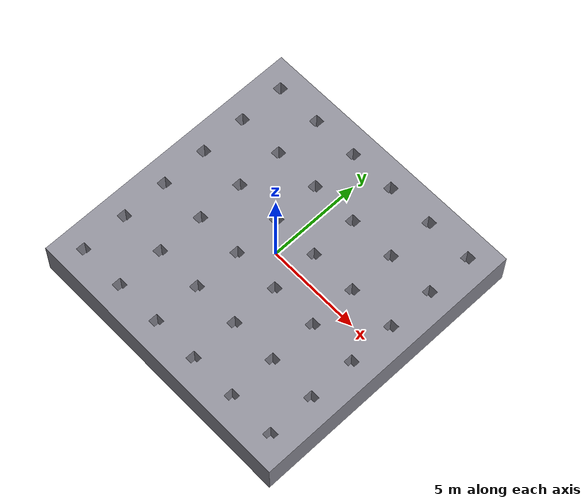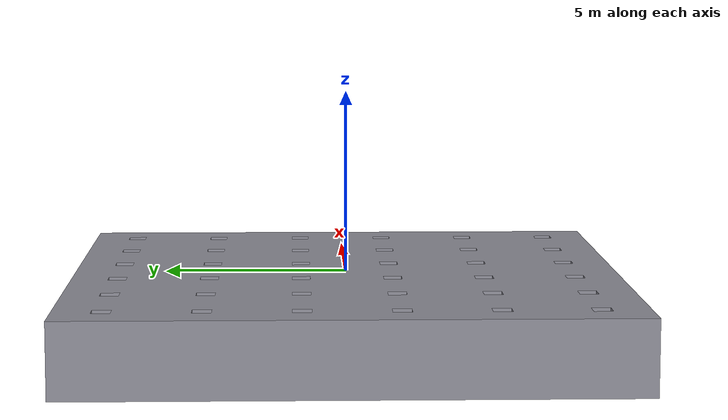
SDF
<?xml version="1.0" ?>
<sdf version="1.6">
  <model name="nagetive_terrain">
    <static>true</static>
    <link name="link">
      <!-- 顶面与默认地面均在 z=0 会 Z-fighting 闪烁；整体上移 2mm -->
      <pose>0 0 0.002 0 0 0</pose>
      <collision name="collision">
        <geometry>
          <mesh>
            <uri>model://nagetive_terrain/meshes/pitted_ground_15x15x2_36holes.dae</uri>
            </mesh>
        </geometry>
        <surface>
          <friction>
            <ode>
              <mu>0.9</mu>
              <mu2>0.9</mu2>
            </ode>
          </friction>
          <contact>
            <ode>
              <kp>1e8</kp>
              <kd>1</kd>
            </ode>
          </contact>
        </surface>
      </collision>

      <visual name="visual">
        <geometry>
          <mesh>
            <uri>model://nagetive_terrain/meshes/pitted_ground_15x15x2_36holes.dae</uri>
          </mesh>
        </geometry>
        <material>
          <ambient>0.30 0.30 0.32 1</ambient>
          <diffuse>0.56 0.56 0.60 1</diffuse>
          <specular>0.095 0.095 0.10 1</specular>
          <emissive>0 0 0 1</emissive>
        </material>
      </visual>

    </link>
  </model>
</sdf>
